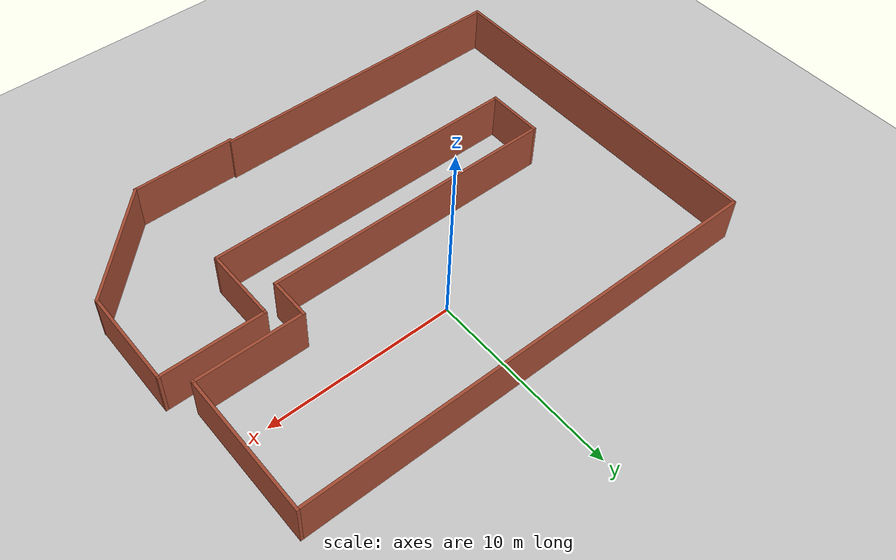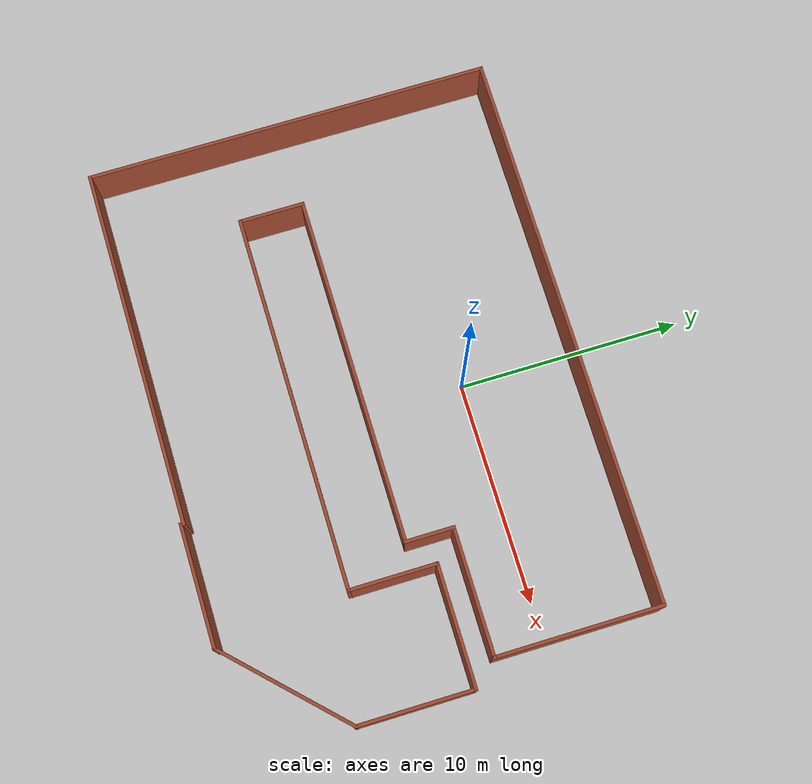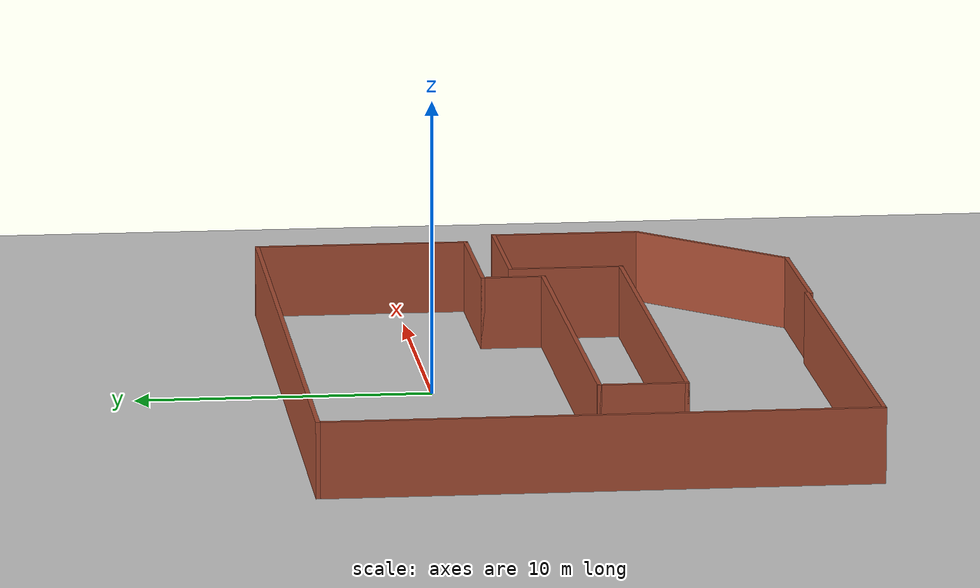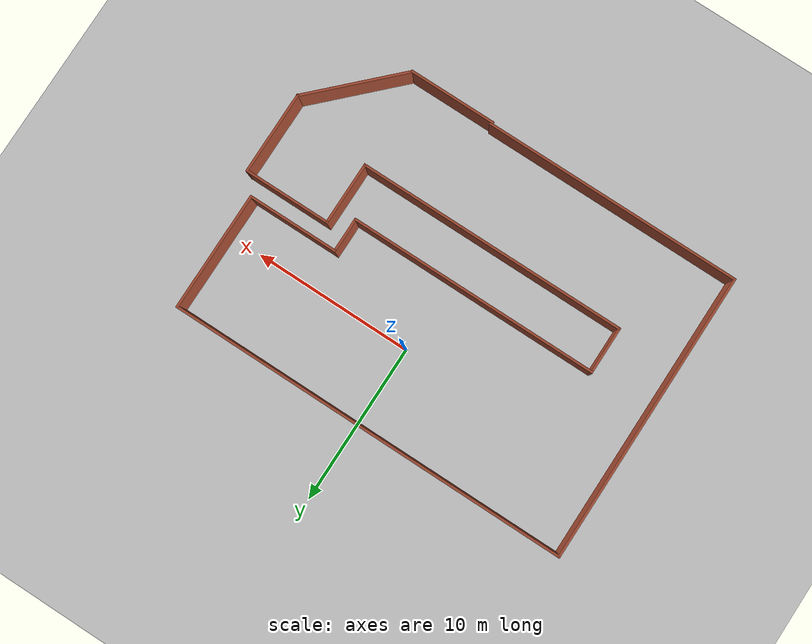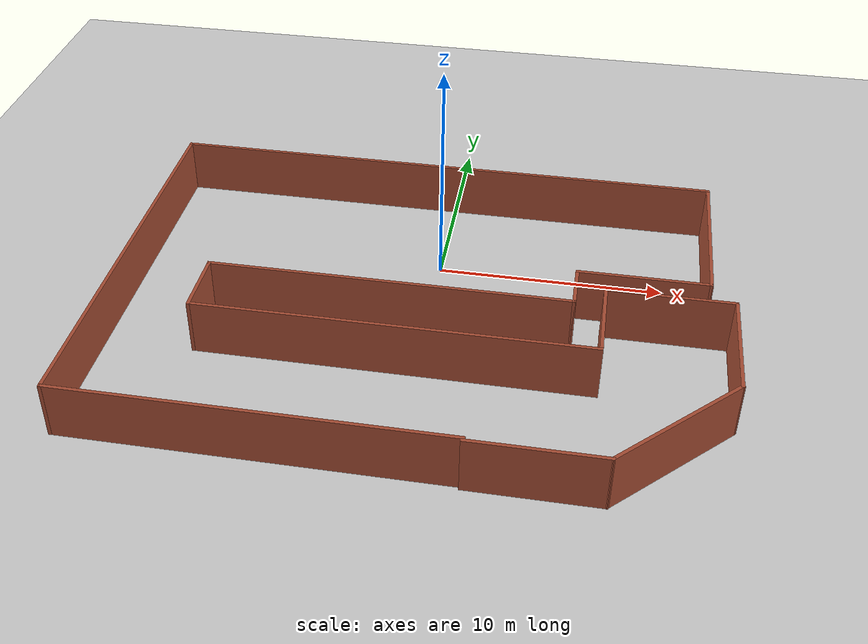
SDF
<sdf version="1.6">
 <world name="default">
  <light name="sun" type="directional">
   <pose>0 0 10 0 -0 0</pose>
   <diffuse>0.8 0.8 0.8 1</diffuse>
   <specular>0.2 0.2 0.2 1</specular>
   <attenuation>
    <range>1000</range>
    <constant>0.9</constant>
    <linear>0.01</linear>
    <quadratic>0.001</quadratic>
   </attenuation>
   <direction>-0.5 0.1 -0.9</direction>
  </light>
  <model name="ground_plane">
   <static>1</static>
   <link name="link">
    <collision name="collision">
     <geometry><plane><normal>0 0 1</normal><size>100 100</size></plane></geometry>
     <surface>
      <contact><collide_bitmask>65535</collide_bitmask></contact>
      <friction><ode><mu>100</mu><mu2>50</mu2></ode></friction>
     </surface>
    </collision>
    <visual name="visual">
     <cast_shadows>0</cast_shadows>
     <geometry><plane><normal>0 0 1</normal><size>100 100</size></plane></geometry>
     <material>
      <script><uri>file://media/materials/scripts/gazebo.material</uri><name>Gazebo/Grey</name></script>
     </material>
    </visual>
   </link>
  </model>
  <gravity>0 0 -9.8</gravity>
  <magnetic_field>6e-06 2.3e-05 -4.2e-05</magnetic_field>
  <atmosphere type="adiabatic"/>
  <physics name="default_physics" default="0" type="ode">
   <max_step_size>0.001</max_step_size>
   <real_time_factor>1</real_time_factor>
   <real_time_update_rate>1000</real_time_update_rate>
  </physics>
  <scene><ambient>0.4 0.4 0.4 1</ambient><background>0.7 0.7 0.7 1</background><shadows>1</shadows></scene>
  <audio><device>default</device></audio>
  <spherical_coordinates>
   <surface_model>EARTH_WGS84</surface_model>
   <latitude_deg>0</latitude_deg>
   <longitude_deg>0</longitude_deg>
   <elevation>0</elevation>
   <heading_deg>0</heading_deg>
  </spherical_coordinates>
  <model name="SCDF">
   <pose>-0.225801 -4.15432 0 0 -0 0</pose>
   <link name="Wall_0">
    <collision name="Wall_0_Collision">
     <geometry><box><size>5.5 0.15 2.5</size></box></geometry>
     <pose>0 0 1.25 0 -0 0</pose>
    </collision>
    <visual name="Wall_0_Visual">
     <pose>0 0 1.25 0 -0 0</pose>
     <geometry><box><size>5.5 0.15 2.5</size></box></geometry>
     <material>
      <script><uri>file://media/materials/scripts/gazebo.material</uri><name>Gazebo/Bricks</name></script>
      <ambient>1 1 1 1</ambient>
     </material>
     <meta><layer>0</layer></meta>
    </visual>
    <pose>5.69256 -9.09292 0 0 -0 0</pose>
   </link>
   <link name="Wall_1">
    <collision name="Wall_1_Collision">
     <geometry><box><size>6.75 0.15 2.5</size></box></geometry>
     <pose>0 0 1.25 0 -0 0</pose>
    </collision>
    <visual name="Wall_1_Visual">
     <pose>0 0 1.25 0 -0 0</pose>
     <geometry><box><size>6.75 0.15 2.5</size></box></geometry>
     <material>
      <script><uri>file://media/materials/scripts/gazebo.material</uri><name>Gazebo/Bricks</name></script>
      <ambient>1 1 1 1</ambient>
     </material>
     <meta><layer>0</layer></meta>
    </visual>
    <pose>10.701 -6.75947 0 0 -0 0.785398</pose>
   </link>
   <link name="Wall_10">
    <collision name="Wall_10_Collision">
     <geometry><box><size>7.5 0.15 2.5</size></box></geometry>
     <pose>0 0 1.25 0 -0 0</pose>
    </collision>
    <visual name="Wall_10_Visual">
     <pose>0 0 1.25 0 -0 0</pose>
     <geometry><box><size>7.5 0.15 2.5</size></box></geometry>
     <material>
      <script><uri>file://media/materials/scripts/gazebo.material</uri><name>Gazebo/Bricks</name></script>
      <ambient>1 1 1 1</ambient>
     </material>
     <meta><layer>0</layer></meta>
    </visual>
    <pose>12.0345 5.44899 0 0 -0 1.5708</pose>
   </link>
   <link name="Wall_11">
    <collision name="Wall_11_Collision">
     <geometry><box><size>25.25 0.15 2.5</size></box></geometry>
     <pose>0 0 1.25 0 -0 0</pose>
    </collision>
    <visual name="Wall_11_Visual">
     <pose>0 0 1.25 0 -0 0</pose>
     <geometry><box><size>25.25 0.15 2.5</size></box></geometry>
     <material>
      <script><uri>file://media/materials/scripts/gazebo.material</uri><name>Gazebo/Bricks</name></script>
      <ambient>1 1 1 1</ambient>
     </material>
     <meta><layer>0</layer></meta>
    </visual>
    <pose>-0.515533 9.12398 0 0 -0 3.14159</pose>
   </link>
   <link name="Wall_12">
    <collision name="Wall_12_Collision">
     <geometry><box><size>18.25 0.15 2.5</size></box></geometry>
     <pose>0 0 1.25 0 -0 0</pose>
    </collision>
    <visual name="Wall_12_Visual">
     <pose>0 0 1.25 0 -0 0</pose>
     <geometry><box><size>18.25 0.15 2.5</size></box></geometry>
     <material>
      <script><uri>file://media/materials/scripts/gazebo.material</uri><name>Gazebo/Bricks</name></script>
      <ambient>1 1 1 1</ambient>
     </material>
     <meta><layer>0</layer></meta>
    </visual>
    <pose>-13.0655 0.073985 0 0 -0 -1.5708</pose>
   </link>
   <link name="Wall_13">
    <collision name="Wall_13_Collision">
     <geometry><box><size>16.25 0.15 2.5</size></box></geometry>
     <pose>0 0 1.25 0 -0 0</pose>
    </collision>
    <visual name="Wall_13_Visual">
     <pose>0 0 1.25 0 -0 0</pose>
     <geometry><box><size>16.25 0.15 2.5</size></box></geometry>
     <material>
      <script><uri>file://media/materials/scripts/gazebo.material</uri><name>Gazebo/Bricks</name></script>
      <ambient>1 1 1 1</ambient>
     </material>
     <meta><layer>0</layer></meta>
    </visual>
    <pose>-5.01553 -8.97601 0 0 -0 0</pose>
   </link>
   <link name="Wall_2">
    <collision name="Wall_2_Collision">
     <geometry><box><size>5.25 0.15 2.5</size></box></geometry>
     <pose>0 0 1.25 0 -0 0</pose>
    </collision>
    <visual name="Wall_2_Visual">
     <pose>0 0 1.25 0 -0 0</pose>
     <geometry><box><size>5.25 0.15 2.5</size></box></geometry>
     <material>
      <script><uri>file://media/materials/scripts/gazebo.material</uri><name>Gazebo/Bricks</name></script>
      <ambient>1 1 1 1</ambient>
     </material>
     <meta><layer>0</layer></meta>
    </visual>
    <pose>13.0345 -1.87601 0 0 -0 1.5708</pose>
   </link>
   <link name="Wall_3">
    <collision name="Wall_3_Collision">
     <geometry><box><size>5.5 0.15 2.5</size></box></geometry>
     <pose>0 0 1.25 0 -0 0</pose>
    </collision>
    <visual name="Wall_3_Visual">
     <pose>0 0 1.25 0 -0 0</pose>
     <geometry><box><size>5.5 0.15 2.5</size></box></geometry>
     <material>
      <script><uri>file://media/materials/scripts/gazebo.material</uri><name>Gazebo/Bricks</name></script>
      <ambient>1 1 1 1</ambient>
     </material>
     <meta><layer>0</layer></meta>
    </visual>
    <pose>10.3595 0.673986 0 0 -0 3.14159</pose>
   </link>
   <link name="Wall_4">
    <collision name="Wall_4_Collision">
     <geometry><box><size>4 0.15 2.5</size></box></geometry>
     <pose>0 0 1.25 0 -0 0</pose>
    </collision>
    <visual name="Wall_4_Visual">
     <pose>0 0 1.25 0 -0 0</pose>
     <geometry><box><size>4 0.15 2.5</size></box></geometry>
     <material>
      <script><uri>file://media/materials/scripts/gazebo.material</uri><name>Gazebo/Bricks</name></script>
      <ambient>1 1 1 1</ambient>
     </material>
     <meta><layer>0</layer></meta>
    </visual>
    <pose>7.68447 -1.25101 0 0 -0 -1.5708</pose>
   </link>
   <link name="Wall_5">
    <collision name="Wall_5_Collision">
     <geometry><box><size>17 0.15 2.5</size></box></geometry>
     <pose>0 0 1.25 0 -0 0</pose>
    </collision>
    <visual name="Wall_5_Visual">
     <pose>0 0 1.25 0 -0 0</pose>
     <geometry><box><size>17 0.15 2.5</size></box></geometry>
     <material>
      <script><uri>file://media/materials/scripts/gazebo.material</uri><name>Gazebo/Bricks</name></script>
      <ambient>1 1 1 1</ambient>
     </material>
     <meta><layer>0</layer></meta>
    </visual>
    <pose>-0.740533 -3.17601 0 0 -0 3.14159</pose>
   </link>
   <link name="Wall_6">
    <collision name="Wall_6_Collision">
     <geometry><box><size>3 0.15 2.5</size></box></geometry>
     <pose>0 0 1.25 0 -0 0</pose>
    </collision>
    <visual name="Wall_6_Visual">
     <pose>0 0 1.25 0 -0 0</pose>
     <geometry><box><size>3 0.15 2.5</size></box></geometry>
     <material>
      <script><uri>file://media/materials/scripts/gazebo.material</uri><name>Gazebo/Bricks</name></script>
      <ambient>1 1 1 1</ambient>
     </material>
     <meta><layer>0</layer></meta>
    </visual>
    <pose>-9.16553 -1.75101 0 0 -0 1.5708</pose>
   </link>
   <link name="Wall_7">
    <collision name="Wall_7_Collision">
     <geometry><box><size>15.75 0.15 2.5</size></box></geometry>
     <pose>0 0 1.25 0 -0 0</pose>
    </collision>
    <visual name="Wall_7_Visual">
     <pose>0 0 1.25 0 -0 0</pose>
     <geometry><box><size>15.75 0.15 2.5</size></box></geometry>
     <material>
      <script><uri>file://media/materials/scripts/gazebo.material</uri><name>Gazebo/Bricks</name></script>
      <ambient>1 1 1 1</ambient>
     </material>
     <meta><layer>0</layer></meta>
    </visual>
    <pose>-1.36553 -0.326014 0 0 -0 0</pose>
   </link>
   <link name="Wall_8">
    <collision name="Wall_8_Collision">
     <geometry><box><size>2.25 0.15 2.5</size></box></geometry>
     <pose>0 0 1.25 0 -0 0</pose>
    </collision>
    <visual name="Wall_8_Visual">
     <pose>0 0 1.25 0 -0 0</pose>
     <geometry><box><size>2.25 0.15 2.5</size></box></geometry>
     <material>
      <script><uri>file://media/materials/scripts/gazebo.material</uri><name>Gazebo/Bricks</name></script>
      <ambient>1 1 1 1</ambient>
     </material>
     <meta><layer>0</layer></meta>
    </visual>
    <pose>6.43447 0.723986 0 0 -0 1.5708</pose>
   </link>
   <link name="Wall_9">
    <collision name="Wall_9_Collision">
     <geometry><box><size>5.75 0.15 2.5</size></box></geometry>
     <pose>0 0 1.25 0 -0 0</pose>
    </collision>
    <visual name="Wall_9_Visual">
     <pose>0 0 1.25 0 -0 0</pose>
     <geometry><box><size>5.75 0.15 2.5</size></box></geometry>
     <material>
      <script><uri>file://media/materials/scripts/gazebo.material</uri><name>Gazebo/Bricks</name></script>
      <ambient>1 1 1 1</ambient>
     </material>
     <meta><layer>0</layer></meta>
    </visual>
    <pose>9.23447 1.77399 0 0 -0 0</pose>
   </link>
   <static>1</static>
  </model>
 </world>
</sdf>
